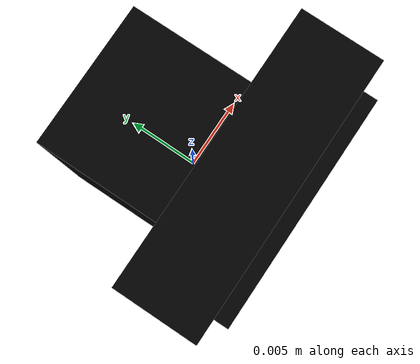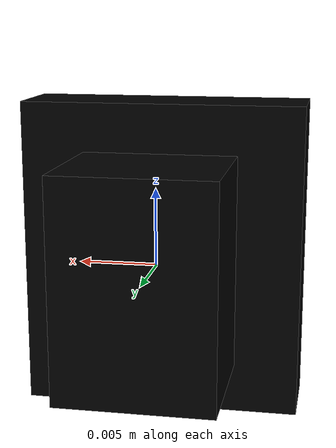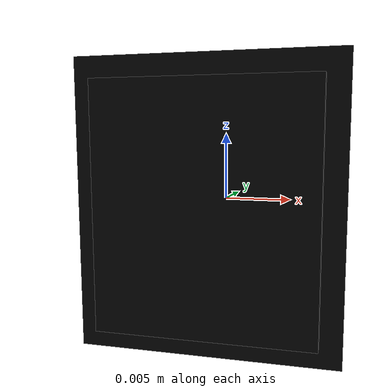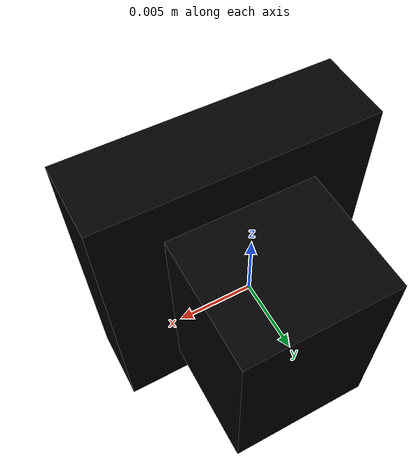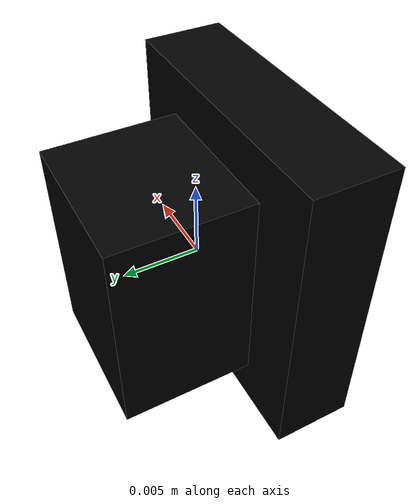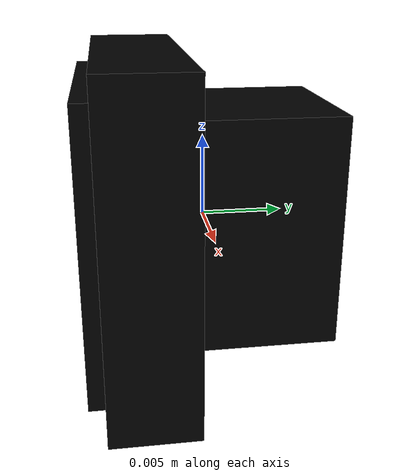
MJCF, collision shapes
<?xml version="1.0" ?>
<mujoco model="model">
    <compiler angle="radian"/>
    <asset>
        <mesh file="visuals/CabinetHandle041.obj" name="mesh"/>
        <texture file="visuals/T_BC001.png" name="tex" type="2d"/>
        <material name="mat" rgba="1 1 1 1.0" texture="tex" shininess="0.5" specular="0.5"/>
    </asset>
    <default>
        <default class="visual">
            <geom conaffinity="0" contype="0" group="1" type="mesh"/>
        </default>
        <default class="collision">
            <geom group="0" rgba="0 0 0 0"/>
        </default>
        <default class="spawn">
            <geom group="0" rgba="0 0 0 0" contype="0" conaffinity="0"/>
            <site group="0" rgba="0 0 0 0"/>
        </default>
    </default>
    <worldbody>
        <body>
            <body name="object">
                <geom mesh="mesh" type="mesh" solimp="0.998 0.998 0.001" solref="0.001 1" density="100" friction="0.95 0.3 0.1" class="visual" material="mat"/>
                <geom class="collision" type="box" pos="8.221550160669722e-06 -0.006838402710855007 -6.4675128669478e-05" size="0.007665995508432388 0.0007401001057587564 0.008684500120580196" quat="1.0 0.0 0.0 0.0"/>
                <geom class="collision" type="box" pos="-2.7401842999097425e-06 -0.0038937495555728674 -2.169570143450983e-05" size="0.009194012731313705 0.0026767682284116745 0.010218950919806957" quat="1.0 0.0 0.0 0.0"/>
                <geom class="collision" type="box" pos="6.045961526979227e-06 0.0031989230774343014 -5.400899226515321e-06" size="0.005017661489546299 0.004387146793305874 0.007022843696177006" quat="1.0 0.0 0.0 0.0" name="handle_connector"/>
            </body>
        </body>
    </worldbody>
    <actuator/>
</mujoco>
